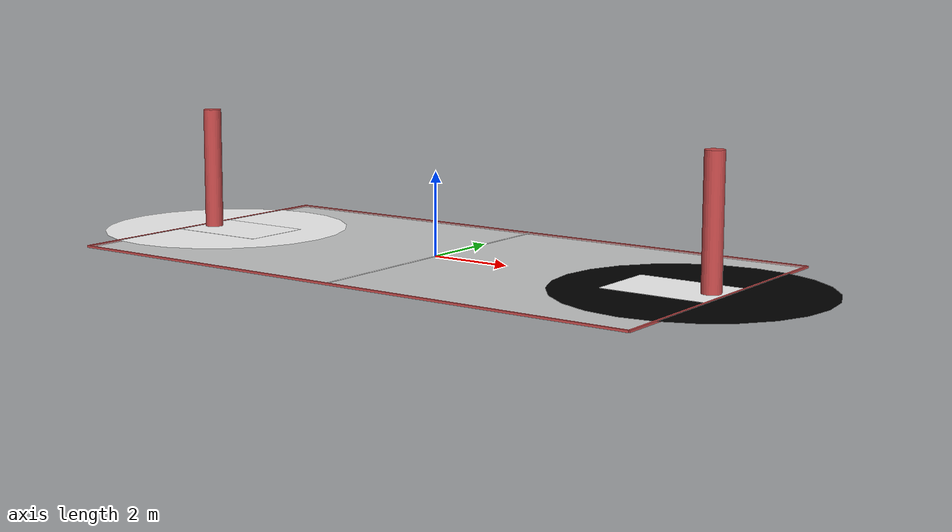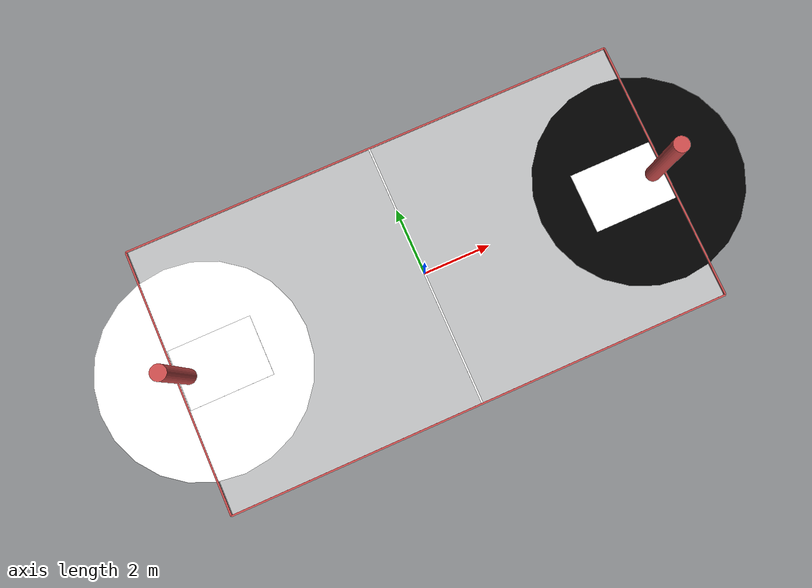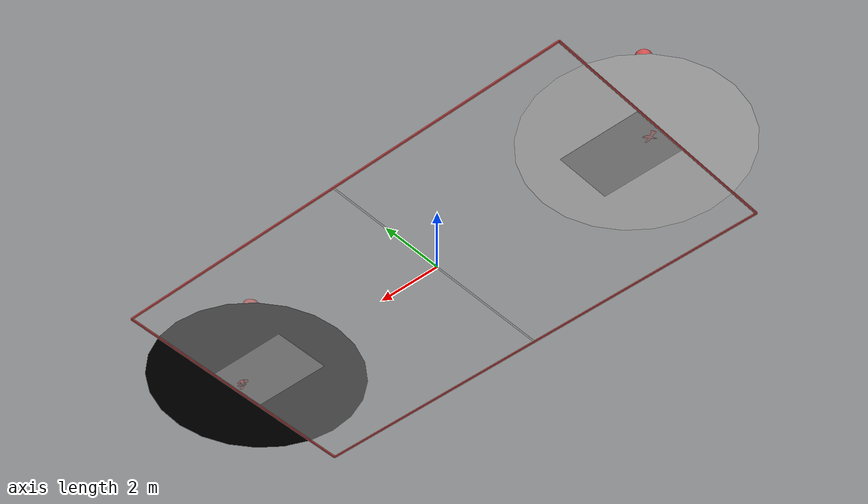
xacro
<?xml version="1.0"?>
<robot name="game_field">
  <!-- Root Frame -->
  <link name="game_field_map"/>

  <!-- Static Joint from map to field_base -->
  <joint name="map_to_field_base" type="fixed">
    <parent link="game_field_map"/>
    <child link="field_base"/>
    <origin xyz="0 0 0" rpy="0 0 0"/> <!-- Adjust if necessary -->
  </joint>

  <!-- Main Field Base -->
  <link name="field_base">
    <visual>
      <geometry>
        <box size="15.0 8.0 0.01"/> <!-- Main field dimensions -->
      </geometry>
      <material name="field_surface">
        <color rgba="1.0 1.0 1.0 0.5"/> <!-- Semi-transparent white -->
      </material>
    </visual>
    <collision>
      <geometry>
        <box size="15.0 8.0 0.01"/>
      </geometry>
    </collision>
    <!-- Inertial properties -->
    <inertial>
      <mass value="1.0"/>
      <origin xyz="0 0 0" rpy="0 0 0"/>
      <inertia ixx="1.0" ixy="0.0" ixz="0.0" iyy="1.0" iyz="0.0" izz="1.0"/>
    </inertial>
  </link>

  <!-- Left Hoop -->
  <link name="hoop_left">
    <visual>
      <geometry>
        <cylinder radius="0.225" length="3.05"/> <!-- Hoop post dimensions -->
      </geometry>
      <material name="hoop_material">
        <color rgba="0.8 0.3 0.3 1.0"/> <!-- Red hoop -->
      </material>
    </visual>
    <collision>
      <geometry>
        <cylinder radius="0.225" length="3.05"/>
      </geometry>
    </collision>
    <!-- Inertial properties -->
    <inertial>
      <mass value="1.0"/>
      <origin xyz="0 0 0" rpy="0 0 0"/>
      <inertia ixx="0.1" ixy="0.0" ixz="0.0" iyy="0.1" iyz="0.0" izz="0.1"/>
    </inertial>
  </link>
  <joint name="hoop_left_joint" type="fixed">
    <parent link="field_base"/>
    <child link="hoop_left"/>
    <origin xyz="7.2 0.0 1.525"/> <!-- Position of the left hoop -->
  </joint>

  <!-- Right Hoop -->
  <link name="hoop_right">
    <visual>
      <geometry>
        <cylinder radius="0.225" length="3.05"/> <!-- Hoop post dimensions -->
      </geometry>
      <material name="hoop_material">
        <color rgba="0.8 0.3 0.3 1.0"/> <!-- Red hoop -->
      </material>
    </visual>
    <collision>
      <geometry>
        <cylinder radius="0.225" length="3.05"/>
      </geometry>
    </collision>
    <!-- Inertial properties -->
    <inertial>
      <mass value="1.0"/>
      <origin xyz="0 0 0" rpy="0 0 0"/>
      <inertia ixx="0.1" ixy="0.0" ixz="0.0" iyy="0.1" iyz="0.0" izz="0.1"/>
    </inertial>
  </link>
  <joint name="hoop_right_joint" type="fixed">
    <parent link="field_base"/>
    <child link="hoop_right"/>
    <origin xyz="-7.2 -0.0 1.525"/> <!-- Position of the right hoop -->
  </joint>

  <!-- Key Zone Left -->
  <link name="key_zone_left">
    <visual>
      <geometry>
        <box size="2.5 1.8 0.01"/> <!-- Key zone dimensions -->
      </geometry>
      <material name="zone_material">
        <color rgba="0.5 0.5 0.5 1.0"/> <!-- Grey color for the field -->
      </material>
    </visual>
    <collision>
      <geometry>
        <box size="2.5 1.8 0.01"/>
      </geometry>
    </collision>
    <!-- Inertial properties -->
    <inertial>
      <mass value="0.5"/>
      <origin xyz="0 0 0" rpy="0 0 0"/>
      <inertia ixx="0.1" ixy="0.0" ixz="0.0" iyy="0.1" iyz="0.0" izz="0.1"/>
    </inertial>
  </link>
  <joint name="key_zone_left_joint" type="fixed">
    <parent link="field_base"/>
    <child link="key_zone_left"/>
    <origin xyz="6.25 0.0 0.005"/> <!-- Position in front of the left hoop -->
  </joint>

  <!-- Key Zone Right -->
  <link name="key_zone_right">
    <visual>
      <geometry>
        <box size="2.5 1.8 0.01"/> <!-- Key zone dimensions -->
      </geometry>
      <material name="zone_material">
        <color rgba="0.5 0.5 0.5 1.0"/> <!-- Grey color for the field -->
      </material>
    </visual>
    <collision>
      <geometry>
        <box size="2.5 1.8 0.01"/>
      </geometry>
    </collision>
    <!-- Inertial properties -->
    <inertial>
      <mass value="0.5"/>
      <origin xyz="0 0 0" rpy="0 0 0"/>
      <inertia ixx="0.1" ixy="0.0" ixz="0.0" iyy="0.1" iyz="0.0" izz="0.1"/>
    </inertial>
  </link>
  <joint name="key_zone_right_joint" type="fixed">
    <parent link="field_base"/>
    <child link="key_zone_right"/>
    <origin xyz="-6.25 0.0 0.005"/> <!-- Position in front of the right hoop -->
  </joint>

  <!-- Center Line -->
  <link name="center_line">
    <visual>
      <geometry>
        <box size="0.05 8.0 0.01"/> <!-- Center line dimensions -->
      </geometry>
      <material name="line_material">
        <color rgba="1.0 1.0 1.0 1.0"/> <!-- White line -->
      </material>
    </visual>
    <collision>
      <geometry>
        <box size="0.05 8.0 0.01"/>
      </geometry>
    </collision>
    <!-- Inertial properties -->
    <inertial>
      <mass value="0.1"/>
      <origin xyz="0 0 0" rpy="0 0 0"/>
      <inertia ixx="0.1" ixy="0.0" ixz="0.0" iyy="0.1" iyz="0.0" izz="0.1"/>
    </inertial>
  </link>
  <joint name="center_line_joint" type="fixed">
    <parent link="field_base"/>
    <child link="center_line"/>
    <origin xyz="0.0 0.0 0.005"/> <!-- Positioned at the center of the field -->
  </joint>

  <!-- Goal Area Rectangle (Left) -->
  <link name="left_goal_area">
	<visual>
  	<geometry>
    	<box size="2.5 1.8 0.01"/> <!-- Size: 4500mm x 1800mm -->
  	</geometry>
  	<material name="white">
    	<color rgba="1.0 1.0 1.0 1.0"/> <!-- White zone -->
  	</material>
	</visual>
	<collision>
  	<geometry>
    	<box size="2.5 1.8 0.01"/>
  	</geometry>
	</collision>
  </link>
  <joint name="left_goal_joint" type="fixed">
	<parent link="field_base"/>
	<child link="left_goal_area"/>
	<origin xyz="-6.25 0 0.01" rpy="0 0 0"/> <!-- Position relative to field -->
  </joint>

 <!-- Goal Area Rectangle (Right) -->
  <link name="right_goal_area">
	<visual>
  	<geometry>
    	<box size="2.5 1.8 0.01"/> <!-- Size: 4500mm x 1800mm -->
  	</geometry>
  	<material name="white">
    	<color rgba="1.0 1.0 1.0 1.0"/> <!-- White zone -->
  	</material>
	</visual>
	<collision>
  	<geometry>
    	<box size="2.5 1.8 0.01"/>
  	</geometry>
	</collision>
  </link>
  <joint name="right_goal_joint" type="fixed">
	<parent link="field_base"/>
	<child link="right_goal_area"/>
	<origin xyz="6.25 0 0.01" rpy="0 0 0"/> <!-- Position relative to field -->
  </joint>

 <!-- Fence_right-->
  <link name="fence_right">
	<visual>
  	<geometry>
    	<box size="15.1 0.05 0.05"/> <!-- Length: 15m, Thickness: 0.1m, Height: 2m -->
  	</geometry>
  	<material name="gray">
        <color rgba="0.8 0.3 0.3 1.0"/> <!-- Red -->
  	</material>
	</visual>
	<collision>
  	<geometry>
    	<box size="15.1 0.05 0.05"/>
  	</geometry>
	</collision>
	<inertial>
  	<mass value="5.0"/>
  	<origin xyz="0 0 0" rpy="0 0 0"/>
  	<inertia ixx="1.0" ixy="0.0" ixz="0.0" iyy="1.0" iyz="0.0" izz="1.0"/>
	</inertial>
  </link>
  <joint name="fence_joint_right" type="fixed">
	<parent link="field_base"/>
	<child link="fence_right"/>
	<origin xyz="0.0 -4.0 0.0" rpy="0 0 0"/> <!-- Positioned behind the field -->
  </joint>

 <!-- Fence_left -->
  <link name="fence_left">
	<visual>
  	<geometry>
    	<box size="15.1 0.05 0.05"/> <!-- Length: 15m, Thickness: 0.1m, Height: 2m -->
  	</geometry>
  	<material name="gray">
        <color rgba="0.8 0.3 0.3 1.0"/> <!-- Red -->
  	</material>
	</visual>
	<collision>
  	<geometry>
    	<box size="15.1 0.05 0.05"/>
  	</geometry>
	</collision>
	<inertial>
  	<mass value="5.0"/>
  	<origin xyz="0 0 0" rpy="0 0 0"/>
  	<inertia ixx="1.0" ixy="0.0" ixz="0.0" iyy="1.0" iyz="0.0" izz="1.0"/>
	</inertial>
  </link>
  <joint name="fence_joint_left" type="fixed">
	<parent link="field_base"/>
	<child link="fence_left"/>
	<origin xyz="0.0 4.0 0.0" rpy="0 0 0"/> <!-- Positioned behind the field -->
  </joint>

<!-- Fence_left -->
  <link name="fence_north">
	<visual>
  	<geometry>
    	<box size="0.05 8.0 0.05"/> <!-- Length: 15m, Thickness: 0.1m, Height: 2m -->
  	</geometry>
  	<material name="gray">
        <color rgba="0.8 0.3 0.3 1.0"/> <!-- Red -->
  	</material>
	</visual>
	<collision>
  	<geometry>
    	<box size="0.05 8.0 0.05"/>
  	</geometry>
	</collision>
	<inertial>
  	<mass value="5.0"/>
  	<origin xyz="0 0 0" rpy="0 0 0"/>
  	<inertia ixx="1.0" ixy="0.0" ixz="0.0" iyy="1.0" iyz="0.0" izz="1.0"/>
	</inertial>
  </link>
  <joint name="fence_joint_north" type="fixed">
	<parent link="field_base"/>
	<child link="fence_north"/>
	<origin xyz="7.55 0.0 0.0" rpy="0 0 0"/> <!-- Positioned behind the field -->
  </joint>

<!-- Fence_left -->
  <link name="fence_west">
	<visual>
  	<geometry>
    	<box size="0.05 8.0 0.05"/> <!-- Length: 15m, Thickness: 0.1m, Height: 2m -->
  	</geometry>
  	<material name="gray">
        <color rgba="0.8 0.3 0.3 1.0"/> <!-- Red -->
  	</material>
	</visual>
	<collision>
  	<geometry>
    	<box size="0.05 8.0 0.05"/>
  	</geometry>
	</collision>
	<inertial>
  	<mass value="5.0"/>
  	<origin xyz="0 0 0" rpy="0 0 0"/>
  	<inertia ixx="1.0" ixy="0.0" ixz="0.0" iyy="1.0" iyz="0.0" izz="1.0"/>
	</inertial>
  </link>
  <joint name="fence_joint_west" type="fixed">
	<parent link="field_base"/>
	<child link="fence_west"/>
	<origin xyz="-7.55 0.0 0.0" rpy="0 0 0"/> <!-- Positioned behind the field -->
  </joint>

 <!-- 3-Point Line (Left) -->
  <link name="left_three_point_line">
	<visual>
  	<geometry>
    	<cylinder radius="3.1" length="0.0"/> <!-- Line thickness: 50mm, Arc length -->
  	</geometry>
  	<material name="white">
    	<color rgba="1.0 1.0 1.0 1.0"/> <!-- White color -->
  	</material>
	</visual>
	<collision>
  	<geometry>
    	<cylinder radius="3.1" length="0.0"/>
  	</geometry>
	</collision>
	<inertial>
  	<mass value="0.1"/>
  	<origin xyz="0 0 0" rpy="0 0 0"/>
  	<inertia ixx="0.001" ixy="0.0" ixz="0.0" iyy="0.001" iyz="0.0" izz="0.001"/>
	</inertial>
  </link>
  <joint name="left_three_point_line_joint" type="fixed">
	<parent link="field_base"/>
	<child link="left_three_point_line"/>
	<origin xyz="-6.75 0.0 0.01" rpy="0 0 0"/> <!-- Positioned for the left arc -->
  </joint>

<!-- 3-Point Line (right) -->
  <link name="right_three_point_line">
	<visual>
  	<geometry>
    	<cylinder radius="3.1" length="0.0"/> <!-- Line thickness: 50mm, Arc length -->
  	</geometry>
  	<material name="green">
    	<color rgba="0 0 0 0"/> <!-- White color -->
  	</material>
	</visual>
	<collision>
  	<geometry>
    	<cylinder radius="3.1" length="0.0"/>
  	</geometry>
	</collision>
	<inertial>
  	<mass value="0.1"/>
  	<origin xyz="0 0 0" rpy="0 0 0"/>
  	<inertia ixx="0.001" ixy="0.0" ixz="0.0" iyy="0.001" iyz="0.0" izz="0.001"/>
	</inertial>
  </link>
  <joint name="right_three_point_line_joint" type="fixed">
	<parent link="field_base"/>
	<child link="right_three_point_line"/>
	<origin xyz="6.75 0.0 0.01" rpy="0 0 0"/> <!-- Positioned for the left arc -->
  </joint>

</robot>
